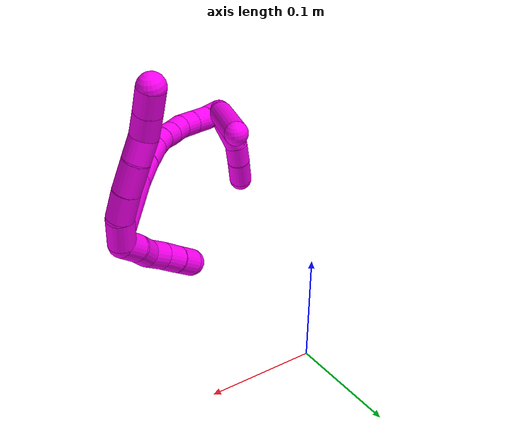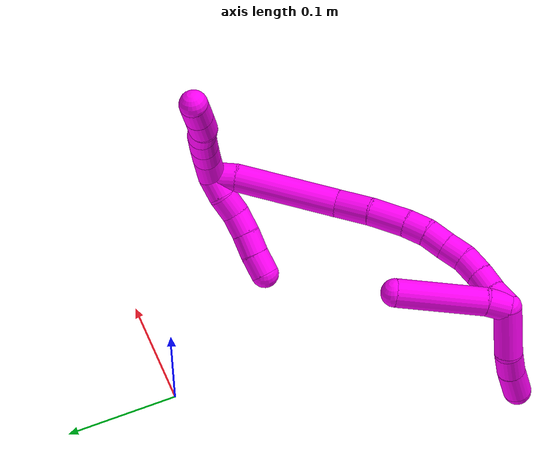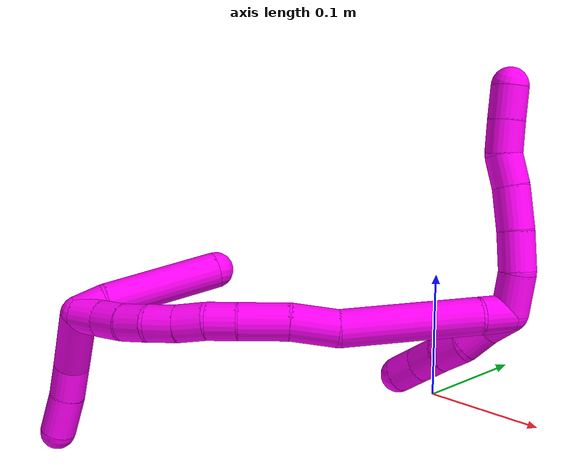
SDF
<sdf version="1.7">
 <world name="default">
  <model name="10">
   <static>0</static>
   <link name="10">
    <collision name="collision-cylinder-e_1_2_8">
     <pose>-0.001283 -0.001009 0.013829 0.07286 -0.092238 -0.003364</pose>
     <geometry><cylinder><radius>0.0125</radius><length>0.02785</length></cylinder></geometry>
     <surface>
      <friction><ode><mu>1.16</mu><mu2>1.16</mu2><slip1>0</slip1><slip2>0</slip2></ode></friction>
      <contact><ode><kp>1e+06</kp><kd>1</kd><max_vel>0</max_vel><min_depth>0.001</min_depth></ode></contact>
     </surface>
    </collision>
    <visual name="visual-cylinder-e_1_2_8">
     <pose>-0.001283 -0.001009 0.013829 0.07286 -0.092238 -0.003364</pose>
     <geometry><cylinder><radius>0.0125</radius><length>0.02785</length></cylinder></geometry>
     <material><ambient>1 0 0.964706 1</ambient></material>
    </visual>
    <collision name="collision-cylinder-e_2_8_9">
     <pose>-0.005057 -0.006481 0.040029 0.346143 -0.187228 -0.032824</pose>
     <geometry><cylinder><radius>0.0125</radius><length>0.026771</length></cylinder></geometry>
     <surface>
      <friction><ode><mu>1.16</mu><mu2>1.16</mu2><slip1>0</slip1><slip2>0</slip2></ode></friction>
      <contact><ode><kp>1e+06</kp><kd>1</kd><max_vel>0</max_vel><min_depth>0.001</min_depth></ode></contact>
     </surface>
    </collision>
    <visual name="visual-cylinder-e_2_8_9">
     <pose>-0.005057 -0.006481 0.040029 0.346143 -0.187228 -0.032824</pose>
     <geometry><cylinder><radius>0.0125</radius><length>0.026771</length></cylinder></geometry>
     <material><ambient>1 0 0.964706 1</ambient></material>
    </visual>
    <collision name="collision-cylinder-e_3_9_10">
     <pose>-0.010463 -0.016726 0.065379 0.419206 -0.202319 -0.04318</pose>
     <geometry><cylinder><radius>0.0125</radius><length>0.029008</length></cylinder></geometry>
     <surface>
      <friction><ode><mu>1.16</mu><mu2>1.16</mu2><slip1>0</slip1><slip2>0</slip2></ode></friction>
      <contact><ode><kp>1e+06</kp><kd>1</kd><max_vel>0</max_vel><min_depth>0.001</min_depth></ode></contact>
     </surface>
    </collision>
    <visual name="visual-cylinder-e_3_9_10">
     <pose>-0.010463 -0.016726 0.065379 0.419206 -0.202319 -0.04318</pose>
     <geometry><cylinder><radius>0.0125</radius><length>0.029008</length></cylinder></geometry>
     <material><ambient>1 0 0.964706 1</ambient></material>
    </visual>
    <collision name="collision-cylinder-e_4_10_11">
     <pose>-0.014734 -0.027873 0.087722 0.520134 -0.125095 -0.033327</pose>
     <geometry><cylinder><radius>0.0125</radius><length>0.021755</length></cylinder></geometry>
     <surface>
      <friction><ode><mu>1.16</mu><mu2>1.16</mu2><slip1>0</slip1><slip2>0</slip2></ode></friction>
      <contact><ode><kp>1e+06</kp><kd>1</kd><max_vel>0</max_vel><min_depth>0.001</min_depth></ode></contact>
     </surface>
    </collision>
    <visual name="visual-cylinder-e_4_10_11">
     <pose>-0.014734 -0.027873 0.087722 0.520134 -0.125095 -0.033327</pose>
     <geometry><cylinder><radius>0.0125</radius><length>0.021755</length></cylinder></geometry>
     <material><ambient>1 0 0.964706 1</ambient></material>
    </visual>
    <collision name="collision-cylinder-e_5_11_12">
     <pose>-0.018334 -0.035563 0.107668 0.216412 -0.204114 -0.022249</pose>
     <geometry><cylinder><radius>0.0125</radius><length>0.022128</length></cylinder></geometry>
     <surface>
      <friction><ode><mu>1.16</mu><mu2>1.16</mu2><slip1>0</slip1><slip2>0</slip2></ode></friction>
      <contact><ode><kp>1e+06</kp><kd>1</kd><max_vel>0</max_vel><min_depth>0.001</min_depth></ode></contact>
     </surface>
    </collision>
    <visual name="visual-cylinder-e_5_11_12">
     <pose>-0.018334 -0.035563 0.107668 0.216412 -0.204114 -0.022249</pose>
     <geometry><cylinder><radius>0.0125</radius><length>0.022128</length></cylinder></geometry>
     <material><ambient>1 0 0.964706 1</ambient></material>
    </visual>
    <collision name="collision-cylinder-e_6_12_6">
     <pose>-0.022807 -0.039986 0.129069 0.191415 -0.199699 -0.019235</pose>
     <geometry><cylinder><radius>0.0125</radius><length>0.022489</length></cylinder></geometry>
     <surface>
      <friction><ode><mu>1.16</mu><mu2>1.16</mu2><slip1>0</slip1><slip2>0</slip2></ode></friction>
      <contact><ode><kp>1e+06</kp><kd>1</kd><max_vel>0</max_vel><min_depth>0.001</min_depth></ode></contact>
     </surface>
    </collision>
    <visual name="visual-cylinder-e_6_12_6">
     <pose>-0.022807 -0.039986 0.129069 0.191415 -0.199699 -0.019235</pose>
     <geometry><cylinder><radius>0.0125</radius><length>0.022489</length></cylinder></geometry>
     <material><ambient>1 0 0.964706 1</ambient></material>
    </visual>
    <collision name="collision-cylinder-e_1_2_13">
     <pose>-0.00027 -0.00685 -0.007281 2.3867 -0.026995 -0.068068</pose>
     <geometry><cylinder><radius>0.0125</radius><length>0.02</length></cylinder></geometry>
     <surface>
      <friction><ode><mu>1.16</mu><mu2>1.16</mu2><slip1>0</slip1><slip2>0</slip2></ode></friction>
      <contact><ode><kp>1e+06</kp><kd>1</kd><max_vel>0</max_vel><min_depth>0.001</min_depth></ode></contact>
     </surface>
    </collision>
    <visual name="visual-cylinder-e_1_2_13">
     <pose>-0.00027 -0.00685 -0.007281 2.3867 -0.026995 -0.068068</pose>
     <geometry><cylinder><radius>0.0125</radius><length>0.02</length></cylinder></geometry>
     <material><ambient>1 0 0.964706 1</ambient></material>
    </visual>
    <collision name="collision-cylinder-e_2_13_14">
     <pose>0.001012 -0.019467 -0.022581 2.51808 0.155843 0.475405</pose>
     <geometry><cylinder><radius>0.0125</radius><length>0.02</length></cylinder></geometry>
     <surface>
      <friction><ode><mu>1.16</mu><mu2>1.16</mu2><slip1>0</slip1><slip2>0</slip2></ode></friction>
      <contact><ode><kp>1e+06</kp><kd>1</kd><max_vel>0</max_vel><min_depth>0.001</min_depth></ode></contact>
     </surface>
    </collision>
    <visual name="visual-cylinder-e_2_13_14">
     <pose>0.001012 -0.019467 -0.022581 2.51808 0.155843 0.475405</pose>
     <geometry><cylinder><radius>0.0125</radius><length>0.02</length></cylinder></geometry>
     <material><ambient>1 0 0.964706 1</ambient></material>
    </visual>
    <collision name="collision-cylinder-e_3_14_15">
     <pose>0.0018 -0.032704 -0.037207 2.295 -0.076476 -0.169423</pose>
     <geometry><cylinder><radius>0.0125</radius><length>0.02</length></cylinder></geometry>
     <surface>
      <friction><ode><mu>1.16</mu><mu2>1.16</mu2><slip1>0</slip1><slip2>0</slip2></ode></friction>
      <contact><ode><kp>1e+06</kp><kd>1</kd><max_vel>0</max_vel><min_depth>0.001</min_depth></ode></contact>
     </surface>
    </collision>
    <visual name="visual-cylinder-e_3_14_15">
     <pose>0.0018 -0.032704 -0.037207 2.295 -0.076476 -0.169423</pose>
     <geometry><cylinder><radius>0.0125</radius><length>0.02</length></cylinder></geometry>
     <material><ambient>1 0 0.964706 1</ambient></material>
    </visual>
    <collision name="collision-cylinder-e_4_15_16">
     <pose>-0.000428 -0.047293 -0.05068 2.33803 -0.146997 -0.343175</pose>
     <geometry><cylinder><radius>0.0125</radius><length>0.02</length></cylinder></geometry>
     <surface>
      <friction><ode><mu>1.16</mu><mu2>1.16</mu2><slip1>0</slip1><slip2>0</slip2></ode></friction>
      <contact><ode><kp>1e+06</kp><kd>1</kd><max_vel>0</max_vel><min_depth>0.001</min_depth></ode></contact>
     </surface>
    </collision>
    <visual name="visual-cylinder-e_4_15_16">
     <pose>-0.000428 -0.047293 -0.05068 2.33803 -0.146997 -0.343175</pose>
     <geometry><cylinder><radius>0.0125</radius><length>0.02</length></cylinder></geometry>
     <material><ambient>1 0 0.964706 1</ambient></material>
    </visual>
    <collision name="collision-cylinder-e_5_16_5">
     <pose>-0.002505 -0.061615 -0.064458 2.33568 -0.0612 -0.143367</pose>
     <geometry><cylinder><radius>0.0125</radius><length>0.02</length></cylinder></geometry>
     <surface>
      <friction><ode><mu>1.16</mu><mu2>1.16</mu2><slip1>0</slip1><slip2>0</slip2></ode></friction>
      <contact><ode><kp>1e+06</kp><kd>1</kd><max_vel>0</max_vel><min_depth>0.001</min_depth></ode></contact>
     </surface>
    </collision>
    <visual name="visual-cylinder-e_5_16_5">
     <pose>-0.002505 -0.061615 -0.064458 2.33568 -0.0612 -0.143367</pose>
     <geometry><cylinder><radius>0.0125</radius><length>0.02</length></cylinder></geometry>
     <material><ambient>1 0 0.964706 1</ambient></material>
    </visual>
    <collision name="collision-cylinder-e_1_2_17">
     <pose>0.008022 -0.007206 -0.001316 1.75138 0.830769 0.972943</pose>
     <geometry><cylinder><radius>0.0125</radius><length>0.021727</length></cylinder></geometry>
     <surface>
      <friction><ode><mu>1.16</mu><mu2>1.16</mu2><slip1>0</slip1><slip2>0</slip2></ode></friction>
      <contact><ode><kp>1e+06</kp><kd>1</kd><max_vel>0</max_vel><min_depth>0.001</min_depth></ode></contact>
     </surface>
    </collision>
    <visual name="visual-cylinder-e_1_2_17">
     <pose>0.008022 -0.007206 -0.001316 1.75138 0.830769 0.972943</pose>
     <geometry><cylinder><radius>0.0125</radius><length>0.021727</length></cylinder></geometry>
     <material><ambient>1 0 0.964706 1</ambient></material>
    </visual>
    <collision name="collision-cylinder-e_2_17_18">
     <pose>0.044233 -0.050088 -0.0119 1.82498 0.65287 0.825226</pose>
     <geometry><cylinder><radius>0.0125</radius><length>0.092805</length></cylinder></geometry>
     <surface>
      <friction><ode><mu>1.16</mu><mu2>1.16</mu2><slip1>0</slip1><slip2>0</slip2></ode></friction>
      <contact><ode><kp>1e+06</kp><kd>1</kd><max_vel>0</max_vel><min_depth>0.001</min_depth></ode></contact>
     </surface>
    </collision>
    <visual name="visual-cylinder-e_2_17_18">
     <pose>0.044233 -0.050088 -0.0119 1.82498 0.65287 0.825226</pose>
     <geometry><cylinder><radius>0.0125</radius><length>0.092805</length></cylinder></geometry>
     <material><ambient>1 0 0.964706 1</ambient></material>
    </visual>
    <collision name="collision-cylinder-e_3_18_19">
     <pose>0.080383 -0.099481 -0.021391 1.58702 0.525849 0.534048</pose>
     <geometry><cylinder><radius>0.0125</radius><length>0.031726</length></cylinder></geometry>
     <surface>
      <friction><ode><mu>1.16</mu><mu2>1.16</mu2><slip1>0</slip1><slip2>0</slip2></ode></friction>
      <contact><ode><kp>1e+06</kp><kd>1</kd><max_vel>0</max_vel><min_depth>0.001</min_depth></ode></contact>
     </surface>
    </collision>
    <visual name="visual-cylinder-e_3_18_19">
     <pose>0.080383 -0.099481 -0.021391 1.58702 0.525849 0.534048</pose>
     <geometry><cylinder><radius>0.0125</radius><length>0.031726</length></cylinder></geometry>
     <material><ambient>1 0 0.964706 1</ambient></material>
    </visual>
    <collision name="collision-cylinder-e_4_19_20">
     <pose>0.096752 -0.127313 -0.024112 1.74597 0.530456 0.626514</pose>
     <geometry><cylinder><radius>0.0125</radius><length>0.033235</length></cylinder></geometry>
     <surface>
      <friction><ode><mu>1.16</mu><mu2>1.16</mu2><slip1>0</slip1><slip2>0</slip2></ode></friction>
      <contact><ode><kp>1e+06</kp><kd>1</kd><max_vel>0</max_vel><min_depth>0.001</min_depth></ode></contact>
     </surface>
    </collision>
    <visual name="visual-cylinder-e_4_19_20">
     <pose>0.096752 -0.127313 -0.024112 1.74597 0.530456 0.626514</pose>
     <geometry><cylinder><radius>0.0125</radius><length>0.033235</length></cylinder></geometry>
     <material><ambient>1 0 0.964706 1</ambient></material>
    </visual>
    <collision name="collision-cylinder-e_5_20_21">
     <pose>0.109379 -0.150506 -0.028494 1.77545 0.427061 0.520825</pose>
     <geometry><cylinder><radius>0.0125</radius><length>0.020374</length></cylinder></geometry>
     <surface>
      <friction><ode><mu>1.16</mu><mu2>1.16</mu2><slip1>0</slip1><slip2>0</slip2></ode></friction>
      <contact><ode><kp>1e+06</kp><kd>1</kd><max_vel>0</max_vel><min_depth>0.001</min_depth></ode></contact>
     </surface>
    </collision>
    <visual name="visual-cylinder-e_5_20_21">
     <pose>0.109379 -0.150506 -0.028494 1.77545 0.427061 0.520825</pose>
     <geometry><cylinder><radius>0.0125</radius><length>0.020374</length></cylinder></geometry>
     <material><ambient>1 0 0.964706 1</ambient></material>
    </visual>
    <collision name="collision-cylinder-e_6_21_22">
     <pose>0.1163 -0.168651 -0.033695 1.92154 0.272818 0.387827</pose>
     <geometry><cylinder><radius>0.0125</radius><length>0.020049</length></cylinder></geometry>
     <surface>
      <friction><ode><mu>1.16</mu><mu2>1.16</mu2><slip1>0</slip1><slip2>0</slip2></ode></friction>
      <contact><ode><kp>1e+06</kp><kd>1</kd><max_vel>0</max_vel><min_depth>0.001</min_depth></ode></contact>
     </surface>
    </collision>
    <visual name="visual-cylinder-e_6_21_22">
     <pose>0.1163 -0.168651 -0.033695 1.92154 0.272818 0.387827</pose>
     <geometry><cylinder><radius>0.0125</radius><length>0.020049</length></cylinder></geometry>
     <material><ambient>1 0 0.964706 1</ambient></material>
    </visual>
    <collision name="collision-cylinder-e_7_22_23">
     <pose>0.12168 -0.187053 -0.039411 1.82228 0.271112 0.348167</pose>
     <geometry><cylinder><radius>0.0125</radius><length>0.02001</length></cylinder></geometry>
     <surface>
      <friction><ode><mu>1.16</mu><mu2>1.16</mu2><slip1>0</slip1><slip2>0</slip2></ode></friction>
      <contact><ode><kp>1e+06</kp><kd>1</kd><max_vel>0</max_vel><min_depth>0.001</min_depth></ode></contact>
     </surface>
    </collision>
    <visual name="visual-cylinder-e_7_22_23">
     <pose>0.12168 -0.187053 -0.039411 1.82228 0.271112 0.348167</pose>
     <geometry><cylinder><radius>0.0125</radius><length>0.02001</length></cylinder></geometry>
     <material><ambient>1 0 0.964706 1</ambient></material>
    </visual>
    <collision name="collision-cylinder-e_8_23_24">
     <pose>0.12469 -0.205961 -0.044764 1.87016 0.033018 0.044742</pose>
     <geometry><cylinder><radius>0.0125</radius><length>0.020044</length></cylinder></geometry>
     <surface>
      <friction><ode><mu>1.16</mu><mu2>1.16</mu2><slip1>0</slip1><slip2>0</slip2></ode></friction>
      <contact><ode><kp>1e+06</kp><kd>1</kd><max_vel>0</max_vel><min_depth>0.001</min_depth></ode></contact>
     </surface>
    </collision>
    <visual name="visual-cylinder-e_8_23_24">
     <pose>0.12469 -0.205961 -0.044764 1.87016 0.033018 0.044742</pose>
     <geometry><cylinder><radius>0.0125</radius><length>0.020044</length></cylinder></geometry>
     <material><ambient>1 0 0.964706 1</ambient></material>
    </visual>
    <collision name="collision-cylinder-e_9_24_25">
     <pose>0.124063 -0.225235 -0.04995 1.79695 -0.095912 -0.120433</pose>
     <geometry><cylinder><radius>0.0125</radius><length>0.020005</length></cylinder></geometry>
     <surface>
      <friction><ode><mu>1.16</mu><mu2>1.16</mu2><slip1>0</slip1><slip2>0</slip2></ode></friction>
      <contact><ode><kp>1e+06</kp><kd>1</kd><max_vel>0</max_vel><min_depth>0.001</min_depth></ode></contact>
     </surface>
    </collision>
    <visual name="visual-cylinder-e_9_24_25">
     <pose>0.124063 -0.225235 -0.04995 1.79695 -0.095912 -0.120433</pose>
     <geometry><cylinder><radius>0.0125</radius><length>0.020005</length></cylinder></geometry>
     <material><ambient>1 0 0.964706 1</ambient></material>
    </visual>
    <collision name="collision-cylinder-e_10_25_1">
     <pose>0.123232 -0.244823 -0.053768 1.72982 0.012642 0.01483</pose>
     <geometry><cylinder><radius>0.0125</radius><length>0.020025</length></cylinder></geometry>
     <surface>
      <friction><ode><mu>1.16</mu><mu2>1.16</mu2><slip1>0</slip1><slip2>0</slip2></ode></friction>
      <contact><ode><kp>1e+06</kp><kd>1</kd><max_vel>0</max_vel><min_depth>0.001</min_depth></ode></contact>
     </surface>
    </collision>
    <visual name="visual-cylinder-e_10_25_1">
     <pose>0.123232 -0.244823 -0.053768 1.72982 0.012642 0.01483</pose>
     <geometry><cylinder><radius>0.0125</radius><length>0.020025</length></cylinder></geometry>
     <material><ambient>1 0 0.964706 1</ambient></material>
    </visual>
    <collision name="collision-cylinder-e_1_1_26">
     <pose>0.116214 -0.249181 -0.05083 -0.884895 -0.785497 0.387615</pose>
     <geometry><cylinder><radius>0.0125</radius><length>0.020205</length></cylinder></geometry>
     <surface>
      <friction><ode><mu>1.16</mu><mu2>1.16</mu2><slip1>0</slip1><slip2>0</slip2></ode></friction>
      <contact><ode><kp>1e+06</kp><kd>1</kd><max_vel>0</max_vel><min_depth>0.001</min_depth></ode></contact>
     </surface>
    </collision>
    <visual name="visual-cylinder-e_1_1_26">
     <pose>0.116214 -0.249181 -0.05083 -0.884895 -0.785497 0.387615</pose>
     <geometry><cylinder><radius>0.0125</radius><length>0.020205</length></cylinder></geometry>
     <material><ambient>1 0 0.964706 1</ambient></material>
    </visual>
    <collision name="collision-cylinder-e_2_26_4">
     <pose>0.077898 -0.221625 -0.034694 -1.08568 -0.896767 0.564929</pose>
     <geometry><cylinder><radius>0.0125</radius><length>0.079795</length></cylinder></geometry>
     <surface>
      <friction><ode><mu>1.16</mu><mu2>1.16</mu2><slip1>0</slip1><slip2>0</slip2></ode></friction>
      <contact><ode><kp>1e+06</kp><kd>1</kd><max_vel>0</max_vel><min_depth>0.001</min_depth></ode></contact>
     </surface>
    </collision>
    <visual name="visual-cylinder-e_2_26_4">
     <pose>0.077898 -0.221625 -0.034694 -1.08568 -0.896767 0.564929</pose>
     <geometry><cylinder><radius>0.0125</radius><length>0.079795</length></cylinder></geometry>
     <material><ambient>1 0 0.964706 1</ambient></material>
    </visual>
    <collision name="collision-cylinder-e_1_1_27">
     <pose>0.118229 -0.259474 -0.077896 2.93324 -0.219034 -1.62116</pose>
     <geometry><cylinder><radius>0.0125</radius><length>0.047209</length></cylinder></geometry>
     <surface>
      <friction><ode><mu>1.16</mu><mu2>1.16</mu2><slip1>0</slip1><slip2>0</slip2></ode></friction>
      <contact><ode><kp>1e+06</kp><kd>1</kd><max_vel>0</max_vel><min_depth>0.001</min_depth></ode></contact>
     </surface>
    </collision>
    <visual name="visual-cylinder-e_1_1_27">
     <pose>0.118229 -0.259474 -0.077896 2.93324 -0.219034 -1.62116</pose>
     <geometry><cylinder><radius>0.0125</radius><length>0.047209</length></cylinder></geometry>
     <material><ambient>1 0 0.964706 1</ambient></material>
    </visual>
    <collision name="collision-cylinder-e_2_27_28">
     <pose>0.113268 -0.264668 -0.112336 3.10565 0.014085 0.746923</pose>
     <geometry><cylinder><radius>0.0125</radius><length>0.023813</length></cylinder></geometry>
     <surface>
      <friction><ode><mu>1.16</mu><mu2>1.16</mu2><slip1>0</slip1><slip2>0</slip2></ode></friction>
      <contact><ode><kp>1e+06</kp><kd>1</kd><max_vel>0</max_vel><min_depth>0.001</min_depth></ode></contact>
     </surface>
    </collision>
    <visual name="visual-cylinder-e_2_27_28">
     <pose>0.113268 -0.264668 -0.112336 3.10565 0.014085 0.746923</pose>
     <geometry><cylinder><radius>0.0125</radius><length>0.023813</length></cylinder></geometry>
     <material><ambient>1 0 0.964706 1</ambient></material>
    </visual>
    <collision name="collision-cylinder-e_3_28_3">
     <pose>0.114841 -0.266371 -0.138598 3.05307 0.097143 1.6637</pose>
     <geometry><cylinder><radius>0.0125</radius><length>0.028978</length></cylinder></geometry>
     <surface>
      <friction><ode><mu>1.16</mu><mu2>1.16</mu2><slip1>0</slip1><slip2>0</slip2></ode></friction>
      <contact><ode><kp>1e+06</kp><kd>1</kd><max_vel>0</max_vel><min_depth>0.001</min_depth></ode></contact>
     </surface>
    </collision>
    <visual name="visual-cylinder-e_3_28_3">
     <pose>0.114841 -0.266371 -0.138598 3.05307 0.097143 1.6637</pose>
     <geometry><cylinder><radius>0.0125</radius><length>0.028978</length></cylinder></geometry>
     <material><ambient>1 0 0.964706 1</ambient></material>
    </visual>
    <collision name="collision-sphere-3">
     <pose>0.116246 -0.267646 -0.152962 0 -0 0</pose>
     <geometry><sphere><radius>0.0125</radius></sphere></geometry>
     <surface>
      <friction><ode><mu>1.16</mu><mu2>1.16</mu2><slip1>0</slip1><slip2>0</slip2></ode></friction>
      <contact><ode><kp>1e+06</kp><kd>1</kd><max_vel>0</max_vel><min_depth>0.001</min_depth></ode></contact>
     </surface>
    </collision>
    <visual name="visual-sphere-3">
     <pose>0.116246 -0.267646 -0.152962 0 -0 0</pose>
     <geometry><sphere><radius>0.0125</radius></sphere></geometry>
     <material><ambient>1 0 0.964706 1</ambient></material>
    </visual>
    <collision name="collision-sphere-28">
     <pose>0.113436 -0.265096 -0.124233 0 -0 0</pose>
     <geometry><sphere><radius>0.0125</radius></sphere></geometry>
     <surface>
      <friction><ode><mu>1.16</mu><mu2>1.16</mu2><slip1>0</slip1><slip2>0</slip2></ode></friction>
      <contact><ode><kp>1e+06</kp><kd>1</kd><max_vel>0</max_vel><min_depth>0.001</min_depth></ode></contact>
     </surface>
    </collision>
    <visual name="visual-sphere-28">
     <pose>0.113436 -0.265096 -0.124233 0 -0 0</pose>
     <geometry><sphere><radius>0.0125</radius></sphere></geometry>
     <material><ambient>1 0 0.964706 1</ambient></material>
    </visual>
    <collision name="collision-sphere-27">
     <pose>0.113101 -0.26424 -0.100438 0 -0 0</pose>
     <geometry><sphere><radius>0.0125</radius></sphere></geometry>
     <surface>
      <friction><ode><mu>1.16</mu><mu2>1.16</mu2><slip1>0</slip1><slip2>0</slip2></ode></friction>
      <contact><ode><kp>1e+06</kp><kd>1</kd><max_vel>0</max_vel><min_depth>0.001</min_depth></ode></contact>
     </surface>
    </collision>
    <visual name="visual-sphere-27">
     <pose>0.113101 -0.26424 -0.100438 0 -0 0</pose>
     <geometry><sphere><radius>0.0125</radius></sphere></geometry>
     <material><ambient>1 0 0.964706 1</ambient></material>
    </visual>
    <collision name="collision-sphere-4">
     <pose>0.046725 -0.199597 -0.023082 0 -0 0</pose>
     <geometry><sphere><radius>0.0125</radius></sphere></geometry>
     <surface>
      <friction><ode><mu>1.16</mu><mu2>1.16</mu2><slip1>0</slip1><slip2>0</slip2></ode></friction>
      <contact><ode><kp>1e+06</kp><kd>1</kd><max_vel>0</max_vel><min_depth>0.001</min_depth></ode></contact>
     </surface>
    </collision>
    <visual name="visual-sphere-4">
     <pose>0.046725 -0.199597 -0.023082 0 -0 0</pose>
     <geometry><sphere><radius>0.0125</radius></sphere></geometry>
     <material><ambient>1 0 0.964706 1</ambient></material>
    </visual>
    <collision name="collision-sphere-26">
     <pose>0.10907 -0.243654 -0.046306 0 -0 0</pose>
     <geometry><sphere><radius>0.0125</radius></sphere></geometry>
     <surface>
      <friction><ode><mu>1.16</mu><mu2>1.16</mu2><slip1>0</slip1><slip2>0</slip2></ode></friction>
      <contact><ode><kp>1e+06</kp><kd>1</kd><max_vel>0</max_vel><min_depth>0.001</min_depth></ode></contact>
     </surface>
    </collision>
    <visual name="visual-sphere-26">
     <pose>0.10907 -0.243654 -0.046306 0 -0 0</pose>
     <geometry><sphere><radius>0.0125</radius></sphere></geometry>
     <material><ambient>1 0 0.964706 1</ambient></material>
    </visual>
    <collision name="collision-sphere-1">
     <pose>0.123358 -0.254709 -0.055354 0 -0 0</pose>
     <geometry><sphere><radius>0.0125</radius></sphere></geometry>
     <surface>
      <friction><ode><mu>1.16</mu><mu2>1.16</mu2><slip1>0</slip1><slip2>0</slip2></ode></friction>
      <contact><ode><kp>1e+06</kp><kd>1</kd><max_vel>0</max_vel><min_depth>0.001</min_depth></ode></contact>
     </surface>
    </collision>
    <visual name="visual-sphere-1">
     <pose>0.123358 -0.254709 -0.055354 0 -0 0</pose>
     <geometry><sphere><radius>0.0125</radius></sphere></geometry>
     <material><ambient>1 0 0.964706 1</ambient></material>
    </visual>
    <collision name="collision-sphere-25">
     <pose>0.123105 -0.234938 -0.052183 0 -0 0</pose>
     <geometry><sphere><radius>0.0125</radius></sphere></geometry>
     <surface>
      <friction><ode><mu>1.16</mu><mu2>1.16</mu2><slip1>0</slip1><slip2>0</slip2></ode></friction>
      <contact><ode><kp>1e+06</kp><kd>1</kd><max_vel>0</max_vel><min_depth>0.001</min_depth></ode></contact>
     </surface>
    </collision>
    <visual name="visual-sphere-25">
     <pose>0.123105 -0.234938 -0.052183 0 -0 0</pose>
     <geometry><sphere><radius>0.0125</radius></sphere></geometry>
     <material><ambient>1 0 0.964706 1</ambient></material>
    </visual>
    <collision name="collision-sphere-24">
     <pose>0.125021 -0.215532 -0.047718 0 -0 0</pose>
     <geometry><sphere><radius>0.0125</radius></sphere></geometry>
     <surface>
      <friction><ode><mu>1.16</mu><mu2>1.16</mu2><slip1>0</slip1><slip2>0</slip2></ode></friction>
      <contact><ode><kp>1e+06</kp><kd>1</kd><max_vel>0</max_vel><min_depth>0.001</min_depth></ode></contact>
     </surface>
    </collision>
    <visual name="visual-sphere-24">
     <pose>0.125021 -0.215532 -0.047718 0 -0 0</pose>
     <geometry><sphere><radius>0.0125</radius></sphere></geometry>
     <material><ambient>1 0 0.964706 1</ambient></material>
    </visual>
    <collision name="collision-sphere-23">
     <pose>0.124359 -0.19639 -0.04181 0 -0 0</pose>
     <geometry><sphere><radius>0.0125</radius></sphere></geometry>
     <surface>
      <friction><ode><mu>1.16</mu><mu2>1.16</mu2><slip1>0</slip1><slip2>0</slip2></ode></friction>
      <contact><ode><kp>1e+06</kp><kd>1</kd><max_vel>0</max_vel><min_depth>0.001</min_depth></ode></contact>
     </surface>
    </collision>
    <visual name="visual-sphere-23">
     <pose>0.124359 -0.19639 -0.04181 0 -0 0</pose>
     <geometry><sphere><radius>0.0125</radius></sphere></geometry>
     <material><ambient>1 0 0.964706 1</ambient></material>
    </visual>
    <collision name="collision-sphere-22">
     <pose>0.119001 -0.177717 -0.037012 0 -0 0</pose>
     <geometry><sphere><radius>0.0125</radius></sphere></geometry>
     <surface>
      <friction><ode><mu>1.16</mu><mu2>1.16</mu2><slip1>0</slip1><slip2>0</slip2></ode></friction>
      <contact><ode><kp>1e+06</kp><kd>1</kd><max_vel>0</max_vel><min_depth>0.001</min_depth></ode></contact>
     </surface>
    </collision>
    <visual name="visual-sphere-22">
     <pose>0.119001 -0.177717 -0.037012 0 -0 0</pose>
     <geometry><sphere><radius>0.0125</radius></sphere></geometry>
     <material><ambient>1 0 0.964706 1</ambient></material>
    </visual>
    <collision name="collision-sphere-21">
     <pose>0.113598 -0.159585 -0.030378 0 -0 0</pose>
     <geometry><sphere><radius>0.0125</radius></sphere></geometry>
     <surface>
      <friction><ode><mu>1.16</mu><mu2>1.16</mu2><slip1>0</slip1><slip2>0</slip2></ode></friction>
      <contact><ode><kp>1e+06</kp><kd>1</kd><max_vel>0</max_vel><min_depth>0.001</min_depth></ode></contact>
     </surface>
    </collision>
    <visual name="visual-sphere-21">
     <pose>0.113598 -0.159585 -0.030378 0 -0 0</pose>
     <geometry><sphere><radius>0.0125</radius></sphere></geometry>
     <material><ambient>1 0 0.964706 1</ambient></material>
    </visual>
    <collision name="collision-sphere-12">
     <pose>-0.020577 -0.037889 0.11825 0 -0 0</pose>
     <geometry><sphere><radius>0.0125</radius></sphere></geometry>
     <surface>
      <friction><ode><mu>1.16</mu><mu2>1.16</mu2><slip1>0</slip1><slip2>0</slip2></ode></friction>
      <contact><ode><kp>1e+06</kp><kd>1</kd><max_vel>0</max_vel><min_depth>0.001</min_depth></ode></contact>
     </surface>
    </collision>
    <visual name="visual-sphere-12">
     <pose>-0.020577 -0.037889 0.11825 0 -0 0</pose>
     <geometry><sphere><radius>0.0125</radius></sphere></geometry>
     <material><ambient>1 0 0.964706 1</ambient></material>
    </visual>
    <collision name="collision-sphere-11">
     <pose>-0.016091 -0.033237 0.097087 0 -0 0</pose>
     <geometry><sphere><radius>0.0125</radius></sphere></geometry>
     <surface>
      <friction><ode><mu>1.16</mu><mu2>1.16</mu2><slip1>0</slip1><slip2>0</slip2></ode></friction>
      <contact><ode><kp>1e+06</kp><kd>1</kd><max_vel>0</max_vel><min_depth>0.001</min_depth></ode></contact>
     </surface>
    </collision>
    <visual name="visual-sphere-11">
     <pose>-0.016091 -0.033237 0.097087 0 -0 0</pose>
     <geometry><sphere><radius>0.0125</radius></sphere></geometry>
     <material><ambient>1 0 0.964706 1</ambient></material>
    </visual>
    <collision name="collision-sphere-10">
     <pose>-0.013377 -0.022509 0.078357 0 -0 0</pose>
     <geometry><sphere><radius>0.0125</radius></sphere></geometry>
     <surface>
      <friction><ode><mu>1.16</mu><mu2>1.16</mu2><slip1>0</slip1><slip2>0</slip2></ode></friction>
      <contact><ode><kp>1e+06</kp><kd>1</kd><max_vel>0</max_vel><min_depth>0.001</min_depth></ode></contact>
     </surface>
    </collision>
    <visual name="visual-sphere-10">
     <pose>-0.013377 -0.022509 0.078357 0 -0 0</pose>
     <geometry><sphere><radius>0.0125</radius></sphere></geometry>
     <material><ambient>1 0 0.964706 1</ambient></material>
    </visual>
    <collision name="collision-sphere-9">
     <pose>-0.007548 -0.010943 0.052401 0 -0 0</pose>
     <geometry><sphere><radius>0.0125</radius></sphere></geometry>
     <surface>
      <friction><ode><mu>1.16</mu><mu2>1.16</mu2><slip1>0</slip1><slip2>0</slip2></ode></friction>
      <contact><ode><kp>1e+06</kp><kd>1</kd><max_vel>0</max_vel><min_depth>0.001</min_depth></ode></contact>
     </surface>
    </collision>
    <visual name="visual-sphere-9">
     <pose>-0.007548 -0.010943 0.052401 0 -0 0</pose>
     <geometry><sphere><radius>0.0125</radius></sphere></geometry>
     <material><ambient>1 0 0.964706 1</ambient></material>
    </visual>
    <collision name="collision-sphere-2">
     <geometry><sphere><radius>0.0125</radius></sphere></geometry>
     <surface>
      <friction><ode><mu>1.16</mu><mu2>1.16</mu2><slip1>0</slip1><slip2>0</slip2></ode></friction>
      <contact><ode><kp>1e+06</kp><kd>1</kd><max_vel>0</max_vel><min_depth>0.001</min_depth></ode></contact>
     </surface>
    </collision>
    <visual name="visual-sphere-2">
     <geometry><sphere><radius>0.0125</radius></sphere></geometry>
     <material><ambient>1 0 0.964706 1</ambient></material>
    </visual>
    <collision name="collision-sphere-19">
     <pose>0.088345 -0.113199 -0.021613 0 -0 0</pose>
     <geometry><sphere><radius>0.0125</radius></sphere></geometry>
     <surface>
      <friction><ode><mu>1.16</mu><mu2>1.16</mu2><slip1>0</slip1><slip2>0</slip2></ode></friction>
      <contact><ode><kp>1e+06</kp><kd>1</kd><max_vel>0</max_vel><min_depth>0.001</min_depth></ode></contact>
     </surface>
    </collision>
    <visual name="visual-sphere-19">
     <pose>0.088345 -0.113199 -0.021613 0 -0 0</pose>
     <geometry><sphere><radius>0.0125</radius></sphere></geometry>
     <material><ambient>1 0 0.964706 1</ambient></material>
    </visual>
    <collision name="collision-sphere-8">
     <pose>-0.002565 -0.002019 0.027658 0 -0 0</pose>
     <geometry><sphere><radius>0.0125</radius></sphere></geometry>
     <surface>
      <friction><ode><mu>1.16</mu><mu2>1.16</mu2><slip1>0</slip1><slip2>0</slip2></ode></friction>
      <contact><ode><kp>1e+06</kp><kd>1</kd><max_vel>0</max_vel><min_depth>0.001</min_depth></ode></contact>
     </surface>
    </collision>
    <visual name="visual-sphere-8">
     <pose>-0.002565 -0.002019 0.027658 0 -0 0</pose>
     <geometry><sphere><radius>0.0125</radius></sphere></geometry>
     <material><ambient>1 0 0.964706 1</ambient></material>
    </visual>
    <collision name="collision-sphere-6">
     <pose>-0.025038 -0.042083 0.139889 0 -0 0</pose>
     <geometry><sphere><radius>0.0125</radius></sphere></geometry>
     <surface>
      <friction><ode><mu>1.16</mu><mu2>1.16</mu2><slip1>0</slip1><slip2>0</slip2></ode></friction>
      <contact><ode><kp>1e+06</kp><kd>1</kd><max_vel>0</max_vel><min_depth>0.001</min_depth></ode></contact>
     </surface>
    </collision>
    <visual name="visual-sphere-6">
     <pose>-0.025038 -0.042083 0.139889 0 -0 0</pose>
     <geometry><sphere><radius>0.0125</radius></sphere></geometry>
     <material><ambient>1 0 0.964706 1</ambient></material>
    </visual>
    <collision name="collision-sphere-13">
     <pose>-0.00054 -0.013699 -0.014562 0 -0 0</pose>
     <geometry><sphere><radius>0.0125</radius></sphere></geometry>
     <surface>
      <friction><ode><mu>1.16</mu><mu2>1.16</mu2><slip1>0</slip1><slip2>0</slip2></ode></friction>
      <contact><ode><kp>1e+06</kp><kd>1</kd><max_vel>0</max_vel><min_depth>0.001</min_depth></ode></contact>
     </surface>
    </collision>
    <visual name="visual-sphere-13">
     <pose>-0.00054 -0.013699 -0.014562 0 -0 0</pose>
     <geometry><sphere><radius>0.0125</radius></sphere></geometry>
     <material><ambient>1 0 0.964706 1</ambient></material>
    </visual>
    <collision name="collision-sphere-14">
     <pose>0.002564 -0.025236 -0.030601 0 -0 0</pose>
     <geometry><sphere><radius>0.0125</radius></sphere></geometry>
     <surface>
      <friction><ode><mu>1.16</mu><mu2>1.16</mu2><slip1>0</slip1><slip2>0</slip2></ode></friction>
      <contact><ode><kp>1e+06</kp><kd>1</kd><max_vel>0</max_vel><min_depth>0.001</min_depth></ode></contact>
     </surface>
    </collision>
    <visual name="visual-sphere-14">
     <pose>0.002564 -0.025236 -0.030601 0 -0 0</pose>
     <geometry><sphere><radius>0.0125</radius></sphere></geometry>
     <material><ambient>1 0 0.964706 1</ambient></material>
    </visual>
    <collision name="collision-sphere-15">
     <pose>0.001036 -0.040172 -0.043813 0 -0 0</pose>
     <geometry><sphere><radius>0.0125</radius></sphere></geometry>
     <surface>
      <friction><ode><mu>1.16</mu><mu2>1.16</mu2><slip1>0</slip1><slip2>0</slip2></ode></friction>
      <contact><ode><kp>1e+06</kp><kd>1</kd><max_vel>0</max_vel><min_depth>0.001</min_depth></ode></contact>
     </surface>
    </collision>
    <visual name="visual-sphere-15">
     <pose>0.001036 -0.040172 -0.043813 0 -0 0</pose>
     <geometry><sphere><radius>0.0125</radius></sphere></geometry>
     <material><ambient>1 0 0.964706 1</ambient></material>
    </visual>
    <collision name="collision-sphere-16">
     <pose>-0.001893 -0.054414 -0.057547 0 -0 0</pose>
     <geometry><sphere><radius>0.0125</radius></sphere></geometry>
     <surface>
      <friction><ode><mu>1.16</mu><mu2>1.16</mu2><slip1>0</slip1><slip2>0</slip2></ode></friction>
      <contact><ode><kp>1e+06</kp><kd>1</kd><max_vel>0</max_vel><min_depth>0.001</min_depth></ode></contact>
     </surface>
    </collision>
    <visual name="visual-sphere-16">
     <pose>-0.001893 -0.054414 -0.057547 0 -0 0</pose>
     <geometry><sphere><radius>0.0125</radius></sphere></geometry>
     <material><ambient>1 0 0.964706 1</ambient></material>
    </visual>
    <collision name="collision-sphere-5">
     <pose>-0.003116 -0.068816 -0.07137 0 -0 0</pose>
     <geometry><sphere><radius>0.0125</radius></sphere></geometry>
     <surface>
      <friction><ode><mu>1.16</mu><mu2>1.16</mu2><slip1>0</slip1><slip2>0</slip2></ode></friction>
      <contact><ode><kp>1e+06</kp><kd>1</kd><max_vel>0</max_vel><min_depth>0.001</min_depth></ode></contact>
     </surface>
    </collision>
    <visual name="visual-sphere-5">
     <pose>-0.003116 -0.068816 -0.07137 0 -0 0</pose>
     <geometry><sphere><radius>0.0125</radius></sphere></geometry>
     <material><ambient>1 0 0.964706 1</ambient></material>
    </visual>
    <collision name="collision-sphere-17">
     <pose>0.016044 -0.014413 -0.002631 0 -0 0</pose>
     <geometry><sphere><radius>0.0125</radius></sphere></geometry>
     <surface>
      <friction><ode><mu>1.16</mu><mu2>1.16</mu2><slip1>0</slip1><slip2>0</slip2></ode></friction>
      <contact><ode><kp>1e+06</kp><kd>1</kd><max_vel>0</max_vel><min_depth>0.001</min_depth></ode></contact>
     </surface>
    </collision>
    <visual name="visual-sphere-17">
     <pose>0.016044 -0.014413 -0.002631 0 -0 0</pose>
     <geometry><sphere><radius>0.0125</radius></sphere></geometry>
     <material><ambient>1 0 0.964706 1</ambient></material>
    </visual>
    <collision name="collision-sphere-18">
     <pose>0.072421 -0.085763 -0.021168 0 -0 0</pose>
     <geometry><sphere><radius>0.0125</radius></sphere></geometry>
     <surface>
      <friction><ode><mu>1.16</mu><mu2>1.16</mu2><slip1>0</slip1><slip2>0</slip2></ode></friction>
      <contact><ode><kp>1e+06</kp><kd>1</kd><max_vel>0</max_vel><min_depth>0.001</min_depth></ode></contact>
     </surface>
    </collision>
    <visual name="visual-sphere-18">
     <pose>0.072421 -0.085763 -0.021168 0 -0 0</pose>
     <geometry><sphere><radius>0.0125</radius></sphere></geometry>
     <material><ambient>1 0 0.964706 1</ambient></material>
    </visual>
    <collision name="collision-sphere-20">
     <pose>0.10516 -0.141428 -0.02661 0 -0 0</pose>
     <geometry><sphere><radius>0.0125</radius></sphere></geometry>
     <surface>
      <friction><ode><mu>1.16</mu><mu2>1.16</mu2><slip1>0</slip1><slip2>0</slip2></ode></friction>
      <contact><ode><kp>1e+06</kp><kd>1</kd><max_vel>0</max_vel><min_depth>0.001</min_depth></ode></contact>
     </surface>
    </collision>
    <visual name="visual-sphere-20">
     <pose>0.10516 -0.141428 -0.02661 0 -0 0</pose>
     <geometry><sphere><radius>0.0125</radius></sphere></geometry>
     <material><ambient>1 0 0.964706 1</ambient></material>
    </visual>
    <inertial>
     <pose>0.057251 -0.121664 -0.019857 0 -0 0</pose>
     <mass>0.75</mass>
     <inertia><ixx>0.000156</ixx><ixy>0</ixy><ixz>0</ixz><iyy>9.5e-05</iyy><iyz>0</iyz><izz>4.4e-05</izz></inertia>
    </inertial>
   </link>
   <pose>0.133007 -0.090296 0.116864 -0.179384 -0.010819 -1.30998</pose>
  </model>
 </world>
</sdf>
